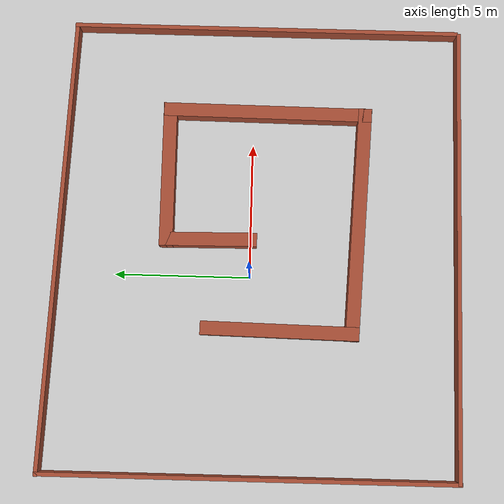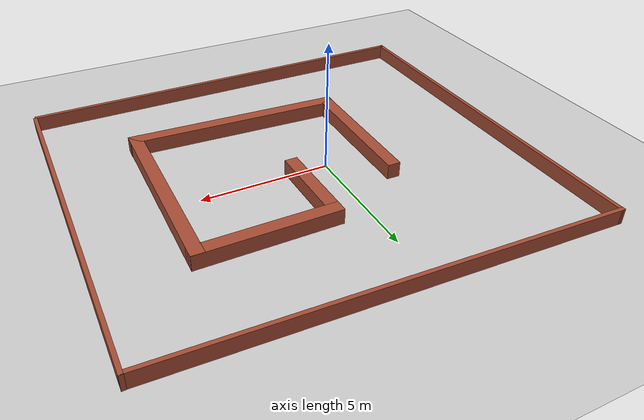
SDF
<sdf version="1.6">
 <world name="default">
  <light name="sun" type="directional">
   <pose>0 0 10 0 -0 0</pose>
   <diffuse>0.8 0.8 0.8 1</diffuse>
   <specular>0.2 0.2 0.2 1</specular>
   <attenuation>
    <range>1000</range>
    <constant>0.9</constant>
    <linear>0.01</linear>
    <quadratic>0.001</quadratic>
   </attenuation>
   <direction>-0.5 0.1 -0.9</direction>
  </light>
  <model name="ground_plane">
   <static>1</static>
   <link name="link">
    <collision name="collision">
     <geometry><plane><normal>0 0 1</normal><size>100 100</size></plane></geometry>
     <surface>
      <contact><collide_bitmask>65535</collide_bitmask></contact>
      <friction><ode><mu>100</mu><mu2>50</mu2></ode></friction>
     </surface>
    </collision>
    <visual name="visual">
     <cast_shadows>0</cast_shadows>
     <geometry><plane><normal>0 0 1</normal><size>100 100</size></plane></geometry>
     <material>
      <script><uri>file://media/materials/scripts/gazebo.material</uri><name>Gazebo/Grey</name></script>
     </material>
    </visual>
   </link>
  </model>
  <gravity>0 0 -9.8</gravity>
  <magnetic_field>6e-06 2.3e-05 -4.2e-05</magnetic_field>
  <atmosphere type="adiabatic"/>
  <physics name="default_physics" default="0" type="ode">
   <max_step_size>0.001</max_step_size>
   <real_time_factor>1</real_time_factor>
   <real_time_update_rate>1000</real_time_update_rate>
  </physics>
  <scene><ambient>0.4 0.4 0.4 1</ambient><background>0.7 0.7 0.7 1</background><shadows>1</shadows></scene>
  <audio><device>default</device></audio>
  <spherical_coordinates>
   <surface_model>EARTH_WGS84</surface_model>
   <latitude_deg>0</latitude_deg>
   <longitude_deg>0</longitude_deg>
   <elevation>0</elevation>
   <heading_deg>0</heading_deg>
  </spherical_coordinates>
  <model name="22">
   <pose>1.095 -0.128615 0 0 -0 0</pose>
   <link name="Wall_0">
    <collision name="Wall_0_Collision">
     <geometry><box><size>16.75 0.15 0.6</size></box></geometry>
     <pose>0 0 0.3 0 -0 0</pose>
    </collision>
    <visual name="Wall_0_Visual">
     <pose>0 0 0.3 0 -0 0</pose>
     <geometry><box><size>16.75 0.15 0.6</size></box></geometry>
     <material>
      <script><uri>file://media/materials/scripts/gazebo.material</uri><name>Gazebo/Bricks</name></script>
      <ambient>1 1 1 1</ambient>
     </material>
     <meta><layer>0</layer></meta>
    </visual>
    <pose>-0.025 -7.54139 0 0 -0 0</pose>
   </link>
   <link name="Wall_10">
    <collision name="Wall_10_Collision">
     <geometry><box><size>8.69881 0.5 0.6</size></box></geometry>
     <pose>0 0 0.3 0 -0 0</pose>
    </collision>
    <visual name="Wall_10_Visual">
     <pose>0 0 0.3 0 -0 0</pose>
     <geometry><box><size>8.69881 0.5 0.6</size></box></geometry>
     <material>
      <script><uri>file://media/materials/scripts/gazebo.material</uri><name>Gazebo/Bricks</name></script>
      <ambient>1 1 1 1</ambient>
     </material>
     <meta><layer>0</layer></meta>
    </visual>
    <pose>0.99 -3.84138 0 0 -0 -0.046365</pose>
   </link>
   <link name="Wall_11">
    <collision name="Wall_11_Collision">
     <geometry><box><size>7.78025 0.5 0.6</size></box></geometry>
     <pose>0 0 0.3 0 -0 0</pose>
    </collision>
    <visual name="Wall_11_Visual">
     <pose>0 0 0.3 0 -0 0</pose>
     <geometry><box><size>7.78025 0.5 0.6</size></box></geometry>
     <material>
      <script><uri>file://media/materials/scripts/gazebo.material</uri><name>Gazebo/Bricks</name></script>
      <ambient>1 1 1 1</ambient>
     </material>
     <meta><layer>0</layer></meta>
    </visual>
    <pose>5.105 -0.391385 0 0 -0 1.56255</pose>
   </link>
   <link name="Wall_13">
    <collision name="Wall_13_Collision">
     <geometry><box><size>5.41001 0.5 0.6</size></box></geometry>
     <pose>0 0 0.3 0 -0 0</pose>
    </collision>
    <visual name="Wall_13_Visual">
     <pose>0 0 0.3 0 -0 0</pose>
     <geometry><box><size>5.41001 0.5 0.6</size></box></geometry>
     <material>
      <script><uri>file://media/materials/scripts/gazebo.material</uri><name>Gazebo/Bricks</name></script>
      <ambient>1 1 1 1</ambient>
     </material>
     <meta><layer>0</layer></meta>
    </visual>
    <pose>2.68 3.25361 0 0 -0 -3.13956</pose>
   </link>
   <link name="Wall_15">
    <collision name="Wall_15_Collision">
     <geometry><box><size>3.59026 0.5 0.6</size></box></geometry>
     <pose>0 0 0.3 0 -0 0</pose>
    </collision>
    <visual name="Wall_15_Visual">
     <pose>0 0 0.3 0 -0 0</pose>
     <geometry><box><size>3.59026 0.5 0.6</size></box></geometry>
     <material>
      <script><uri>file://media/materials/scripts/gazebo.material</uri><name>Gazebo/Bricks</name></script>
      <ambient>1 1 1 1</ambient>
     </material>
     <meta><layer>0</layer></meta>
    </visual>
    <pose>0.245 1.69362 0 0 -0 -1.55785</pose>
   </link>
   <link name="Wall_2">
    <collision name="Wall_2_Collision">
     <geometry><box><size>15.25 0.15 0.6</size></box></geometry>
     <pose>0 0 0.3 0 -0 0</pose>
    </collision>
    <visual name="Wall_2_Visual">
     <pose>0 0 0.3 0 -0 0</pose>
     <geometry><box><size>15.25 0.15 0.6</size></box></geometry>
     <material>
      <script><uri>file://media/materials/scripts/gazebo.material</uri><name>Gazebo/Bricks</name></script>
      <ambient>1 1 1 1</ambient>
     </material>
     <meta><layer>0</layer></meta>
    </visual>
    <pose>-8.33 -0.001385 0 0 -0 1.57146</pose>
   </link>
   <link name="Wall_4">
    <collision name="Wall_4_Collision">
     <geometry><box><size>16.8523 0.15 0.6</size></box></geometry>
     <pose>0 0 0.3 0 -0 0</pose>
    </collision>
    <visual name="Wall_4_Visual">
     <pose>0 0 0.3 0 -0 0</pose>
     <geometry><box><size>16.8523 0.15 0.6</size></box></geometry>
     <material>
      <script><uri>file://media/materials/scripts/gazebo.material</uri><name>Gazebo/Bricks</name></script>
      <ambient>1 1 1 1</ambient>
     </material>
     <meta><layer>0</layer></meta>
    </visual>
    <pose>-0 7.22861 0 0 -0 -0.038328</pose>
   </link>
   <link name="Wall_6">
    <collision name="Wall_6_Collision">
     <geometry><box><size>14.5 0.15 0.6</size></box></geometry>
     <pose>0 0 0.3 0 -0 0</pose>
    </collision>
    <visual name="Wall_6_Visual">
     <pose>0 0 0.3 0 -0 0</pose>
     <geometry><box><size>14.5 0.15 0.6</size></box></geometry>
     <material>
      <script><uri>file://media/materials/scripts/gazebo.material</uri><name>Gazebo/Bricks</name></script>
      <ambient>1 1 1 1</ambient>
     </material>
     <meta><layer>0</layer></meta>
    </visual>
    <pose>8.345 -0.256385 0 0 -0 -1.5708</pose>
   </link>
   <link name="Wall_8">
    <collision name="Wall_8_Collision">
     <geometry><box><size>5.79077 0.5 0.6</size></box></geometry>
     <pose>0 0 0.3 0 -0 0</pose>
    </collision>
    <visual name="Wall_8_Visual">
     <pose>0 0 0.3 0 -0 0</pose>
     <geometry><box><size>5.79077 0.5 0.6</size></box></geometry>
     <material>
      <script><uri>file://media/materials/scripts/gazebo.material</uri><name>Gazebo/Bricks</name></script>
      <ambient>1 1 1 1</ambient>
     </material>
     <meta><layer>0</layer></meta>
    </visual>
    <pose>-3.05 -1.00639 0 0 -0 -1.58781</pose>
   </link>
   <static>1</static>
  </model>
 </world>
</sdf>
